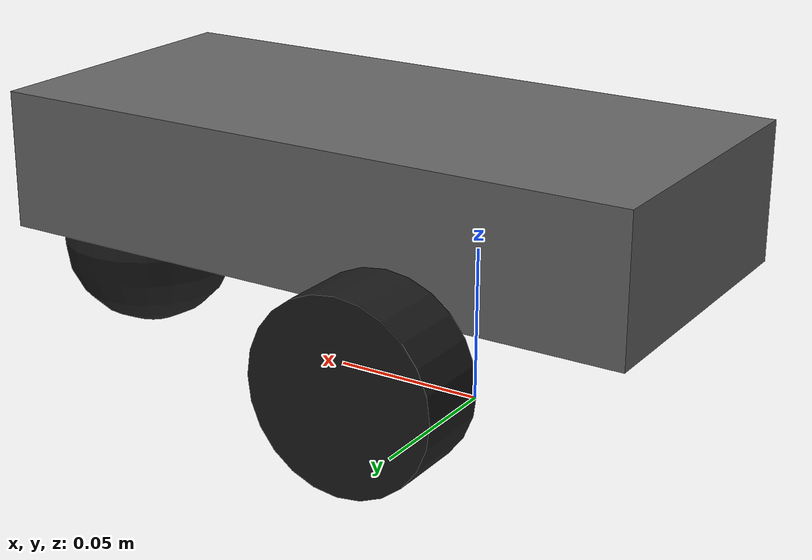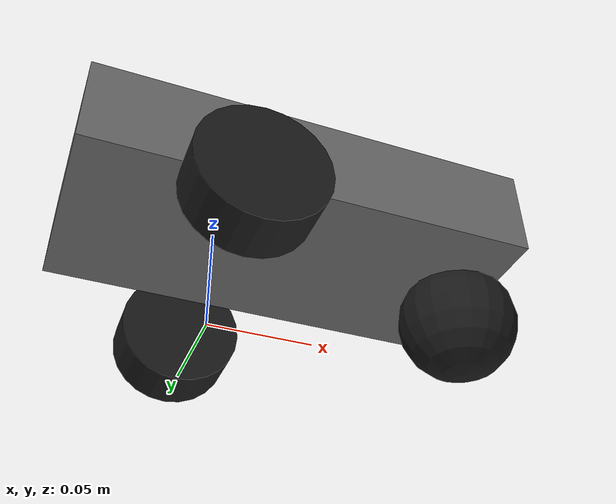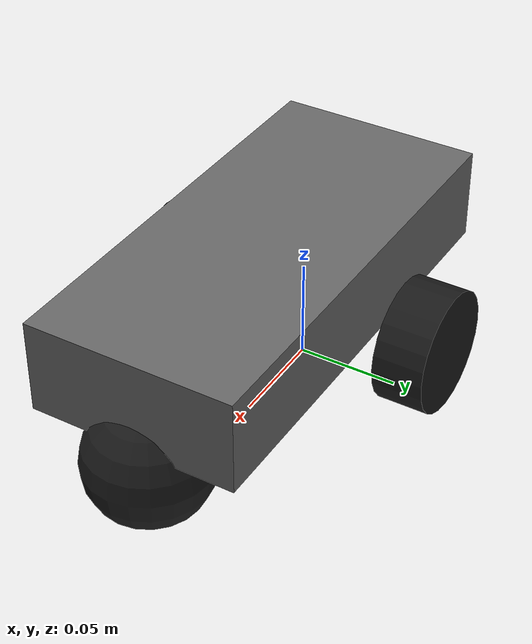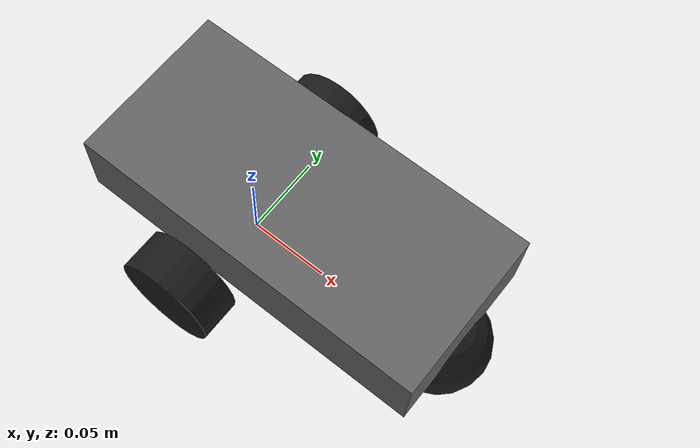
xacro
<?xml version="1.0"?>
<robot xmlns:xacro="http://www.ros.org/wiki/xacro" name="my_robot">

  <xacro:property name="base_length"      value="0.215"/>
  <xacro:property name="base_width"       value="0.10"/>
  <xacro:property name="base_height"      value="0.045"/>
  <xacro:property name="ground_clearance" value="0.045"/>
  <xacro:property name="wheel_radius"     value="0.03"/>
  <xacro:property name="wheel_width"      value="0.025"/>
  <xacro:property name="wheel_separation" value="0.13"/>
  <xacro:property name="body_x_offset"    value="0.035"/>
  <!-- Front caster: forward distance from the drive axle to the caster contact,
       and its radius. Keep caster_radius = wheel_radius to sit level. -->
  <xacro:property name="caster_x"         value="0.13"/>
  <xacro:property name="caster_radius"    value="0.03"/>
  <xacro:property name="scan_x"           value="0.0"/>   <!-- sensor forward offset from axle -->
  <xacro:property name="scan_z"           value="0.15"/>  <!-- sensor height above base_link -->

  <xacro:property name="body_z" value="${ground_clearance + base_height/2}"/>

  <material name="grey"><color rgba="0.4 0.4 0.4 1"/></material>
  <material name="black"><color rgba="0.1 0.1 0.1 1"/></material>

  <!-- Root frame: on the ground, directly below the DRIVE-WHEEL AXLE (the centre
       of rotation). The odom -> base_footprint transform (from wheel_odometry)
       attaches here. -->
  <link name="base_footprint"/>

  <link name="base_link">
    <visual>
      <origin xyz="${body_x_offset} 0 0" rpy="0 0 0"/>
      <geometry><box size="${base_length} ${base_width} ${base_height}"/></geometry>
      <material name="grey"/>
    </visual>
    <collision>
      <origin xyz="${body_x_offset} 0 0" rpy="0 0 0"/>
      <geometry><box size="${base_length} ${base_width} ${base_height}"/></geometry>
    </collision>
  </link>
  <joint name="base_footprint_joint" type="fixed">
    <parent link="base_footprint"/>
    <child link="base_link"/>
    <origin xyz="0 0 ${body_z}" rpy="0 0 0"/>
  </joint>

  <!-- Passive front caster (support wheel). Not driven, not used for odometry;
       included so TF/RViz and the footprint reflect the real robot. -->
  <link name="caster_front">
    <visual>
      <geometry><sphere radius="${caster_radius}"/></geometry>
      <material name="black"/>
    </visual>
    <collision>
      <geometry><sphere radius="${caster_radius}"/></geometry>
    </collision>
  </link>
  <joint name="caster_front_joint" type="fixed">
    <parent link="base_link"/>
    <child link="caster_front"/>
    <origin xyz="${caster_x} 0 ${caster_radius - body_z}" rpy="0 0 0"/>
  </joint>

  <xacro:macro name="wheel" params="name y">
    <link name="${name}">
      <visual>
        <origin rpy="${pi/2} 0 0"/>
        <geometry><cylinder radius="${wheel_radius}" length="${wheel_width}"/></geometry>
        <material name="black"/>
      </visual>
    </link>
    <joint name="${name}_joint" type="fixed">
      <parent link="base_link"/>
      <child link="${name}"/>
      <origin xyz="0 ${y} ${wheel_radius - body_z}" rpy="0 0 0"/>
    </joint>
  </xacro:macro>
  <xacro:wheel name="wheel_left"  y="${ wheel_separation/2}"/>
  <xacro:wheel name="wheel_right" y="${-wheel_separation/2}"/>

  <link name="base_scan"/>
  <joint name="scan_joint" type="fixed">
    <parent link="base_link"/>
    <child link="base_scan"/>
    <origin xyz="${scan_x} 0 ${scan_z}" rpy="0 0 0"/>
  </joint>

</robot>
